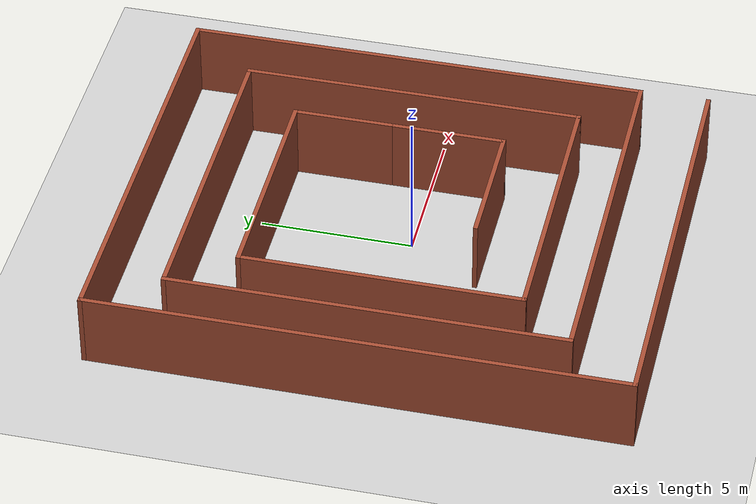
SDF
<sdf version="1.7">
 <world name="maze_world">
  <physics type="ode">
   <ode>
    <solver>
     <friction_model>cone_model</friction_model>
     <type>quick</type>
     <iters>50</iters>
     <sor>1.3</sor>
     <use_dynamic_moi_rescaling>0</use_dynamic_moi_rescaling>
    </solver>
    <constraints>
     <cfm>0</cfm>
     <erp>0.2</erp>
     <contact_max_correcting_vel>100</contact_max_correcting_vel>
     <contact_surface_layer>0.001</contact_surface_layer>
    </constraints>
   </ode>
   <max_step_size>0.001</max_step_size>
   <real_time_factor>1</real_time_factor>
   <real_time_update_rate>1000</real_time_update_rate>
  </physics>
  <light name="sun" type="directional">
   <pose>0 0 100 0.5 0.5 0</pose>
   <diffuse>1 1 1 1</diffuse>
   <specular>0.1 0.1 0.1 1</specular>
   <direction>0.1 0.1 -0.9</direction>
   <attenuation>
    <range>20</range>
    <constant>0.5</constant>
    <linear>0.01</linear>
    <quadratic>0.001</quadratic>
   </attenuation>
   <spot><inner_angle>0</inner_angle><outer_angle>0</outer_angle><falloff>0</falloff></spot>
  </light>
  <scene>
   <ambient>0.6 0.6 0.6 1</ambient>
   <sky><clouds><speed>12</speed></clouds></sky>
   <shadows>1</shadows>
   <origin_visual>0</origin_visual>
   <background>0.7 0.7 0.7 1</background>
  </scene>
  <model name="ground">
   <static>1</static>
   <link name="ground_link">
    <collision name="collision1">
     <geometry><plane><normal>0 0 1</normal><size>1 1</size></plane></geometry>
    </collision>
    <visual name="visual1"><geometry><plane><normal>0 0 1</normal><size>100 100</size></plane></geometry></visual>
   </link>
  </model>
  <gravity>0 0 -9.8</gravity>
  <magnetic_field>6e-06 2.3e-05 -4.2e-05</magnetic_field>
  <atmosphere type="adiabatic"/>
  <spherical_coordinates>
   <surface_model>EARTH_WGS84</surface_model>
   <latitude_deg>0</latitude_deg>
   <longitude_deg>0</longitude_deg>
   <elevation>0</elevation>
   <heading_deg>0</heading_deg>
  </spherical_coordinates>
  <model name="spimaze">
   <pose>-0.505 0.145 0 0 -0 0</pose>
   <link name="Wall_0">
    <collision name="Wall_0_Collision">
     <geometry><box><size>4.5 0.15 2.5</size></box></geometry>
     <pose>0 0 1.25 0 -0 0</pose>
    </collision>
    <visual name="Wall_0_Visual">
     <pose>0 0 1.25 0 -0 0</pose>
     <geometry><box><size>4.5 0.15 2.5</size></box></geometry>
     <material>
      <script><uri>file://media/materials/scripts/gazebo.material</uri><name>Gazebo/Bricks</name></script>
      <ambient>1 1 1 1</ambient>
     </material>
     <meta><layer>0</layer></meta>
    </visual>
    <pose>1.25 -2.525 0 0 -0 0</pose>
   </link>
   <link name="Wall_1">
    <collision name="Wall_1_Collision">
     <geometry><box><size>3.75 0.15 2.5</size></box></geometry>
     <pose>0 0 1.25 0 -0 0</pose>
    </collision>
    <visual name="Wall_1_Visual">
     <pose>0 0 1.25 0 -0 0</pose>
     <geometry><box><size>3.75 0.15 2.5</size></box></geometry>
     <material>
      <script><uri>file://media/materials/scripts/gazebo.material</uri><name>Gazebo/Bricks</name></script>
      <ambient>1 1 1 1</ambient>
     </material>
     <meta><layer>0</layer></meta>
    </visual>
    <pose>3.425 -0.725 0 0 -0 1.5708</pose>
   </link>
   <link name="Wall_10">
    <collision name="Wall_10_Collision">
     <geometry><box><size>15.25 0.15 2.5</size></box></geometry>
     <pose>0 0 1.25 0 -0 0</pose>
    </collision>
    <visual name="Wall_10_Visual">
     <pose>0 0 1.25 0 -0 0</pose>
     <geometry><box><size>15.25 0.15 2.5</size></box></geometry>
     <material>
      <script><uri>file://media/materials/scripts/gazebo.material</uri><name>Gazebo/Bricks</name></script>
      <ambient>1 1 1 1</ambient>
     </material>
     <meta><layer>0</layer></meta>
    </visual>
    <pose>6.925 1.125 0 0 -0 1.5708</pose>
   </link>
   <link name="Wall_11">
    <collision name="Wall_11_Collision">
     <geometry><box><size>14 0.15 2.5</size></box></geometry>
     <pose>0 0 1.25 0 -0 0</pose>
    </collision>
    <visual name="Wall_11_Visual">
     <pose>0 0 1.25 0 -0 0</pose>
     <geometry><box><size>14 0.15 2.5</size></box></geometry>
     <material>
      <script><uri>file://media/materials/scripts/gazebo.material</uri><name>Gazebo/Bricks</name></script>
      <ambient>1 1 1 1</ambient>
     </material>
     <meta><layer>0</layer></meta>
    </visual>
    <pose>0 8.675 0 0 -0 3.14159</pose>
   </link>
   <link name="Wall_12">
    <collision name="Wall_12_Collision">
     <geometry><box><size>17.5 0.15 2.5</size></box></geometry>
     <pose>0 0 1.25 0 -0 0</pose>
    </collision>
    <visual name="Wall_12_Visual">
     <pose>0 0 1.25 0 -0 0</pose>
     <geometry><box><size>17.5 0.15 2.5</size></box></geometry>
     <material>
      <script><uri>file://media/materials/scripts/gazebo.material</uri><name>Gazebo/Bricks</name></script>
      <ambient>1 1 1 1</ambient>
     </material>
     <meta><layer>0</layer></meta>
    </visual>
    <pose>-6.925 -0 0 0 -0 -1.5708</pose>
   </link>
   <link name="Wall_13">
    <collision name="Wall_13_Collision">
     <geometry><box><size>14 0.15 2.5</size></box></geometry>
     <pose>0 0 1.25 0 -0 0</pose>
    </collision>
    <visual name="Wall_13_Visual">
     <pose>0 0 1.25 0 -0 0</pose>
     <geometry><box><size>14 0.15 2.5</size></box></geometry>
     <material>
      <script><uri>file://media/materials/scripts/gazebo.material</uri><name>Gazebo/Bricks</name></script>
      <ambient>1 1 1 1</ambient>
     </material>
     <meta><layer>0</layer></meta>
    </visual>
    <pose>0 -8.675 0 0 -0 0</pose>
   </link>
   <link name="Wall_2">
    <collision name="Wall_2_Collision">
     <geometry><box><size>3.5 0.15 2.5</size></box></geometry>
     <pose>0 0 1.25 0 -0 0</pose>
    </collision>
    <visual name="Wall_2_Visual">
     <pose>0 0 1.25 0 -0 0</pose>
     <geometry><box><size>3.5 0.15 2.5</size></box></geometry>
     <material>
      <script><uri>file://media/materials/scripts/gazebo.material</uri><name>Gazebo/Bricks</name></script>
      <ambient>1 1 1 1</ambient>
     </material>
     <meta><layer>0</layer></meta>
    </visual>
    <pose>3.425 2.75 0 0 -0 1.5708</pose>
   </link>
   <link name="Wall_3">
    <collision name="Wall_3_Collision">
     <geometry><box><size>7.5 0.15 2.5</size></box></geometry>
     <pose>0 0 1.25 0 -0 0</pose>
    </collision>
    <visual name="Wall_3_Visual">
     <pose>0 0 1.25 0 -0 0</pose>
     <geometry><box><size>7.5 0.15 2.5</size></box></geometry>
     <material>
      <script><uri>file://media/materials/scripts/gazebo.material</uri><name>Gazebo/Bricks</name></script>
      <ambient>1 1 1 1</ambient>
     </material>
     <meta><layer>0</layer></meta>
    </visual>
    <pose>-0.25 4.425 0 0 -0 3.14159</pose>
   </link>
   <link name="Wall_4">
    <collision name="Wall_4_Collision">
     <geometry><box><size>9.25 0.15 2.5</size></box></geometry>
     <pose>0 0 1.25 0 -0 0</pose>
    </collision>
    <visual name="Wall_4_Visual">
     <pose>0 0 1.25 0 -0 0</pose>
     <geometry><box><size>9.25 0.15 2.5</size></box></geometry>
     <material>
      <script><uri>file://media/materials/scripts/gazebo.material</uri><name>Gazebo/Bricks</name></script>
      <ambient>1 1 1 1</ambient>
     </material>
     <meta><layer>0</layer></meta>
    </visual>
    <pose>-3.925 -0.125 0 0 -0 -1.5708</pose>
   </link>
   <link name="Wall_5">
    <collision name="Wall_5_Collision">
     <geometry><box><size>9.25 0.15 2.5</size></box></geometry>
     <pose>0 0 1.25 0 -0 0</pose>
    </collision>
    <visual name="Wall_5_Visual">
     <pose>0 0 1.25 0 -0 0</pose>
     <geometry><box><size>9.25 0.15 2.5</size></box></geometry>
     <material>
      <script><uri>file://media/materials/scripts/gazebo.material</uri><name>Gazebo/Bricks</name></script>
      <ambient>1 1 1 1</ambient>
     </material>
     <meta><layer>0</layer></meta>
    </visual>
    <pose>0.625 -4.675 0 0 -0 0</pose>
   </link>
   <link name="Wall_6">
    <collision name="Wall_6_Collision">
     <geometry><box><size>11.25 0.15 2.5</size></box></geometry>
     <pose>0 0 1.25 0 -0 0</pose>
    </collision>
    <visual name="Wall_6_Visual">
     <pose>0 0 1.25 0 -0 0</pose>
     <geometry><box><size>11.25 0.15 2.5</size></box></geometry>
     <material>
      <script><uri>file://media/materials/scripts/gazebo.material</uri><name>Gazebo/Bricks</name></script>
      <ambient>1 1 1 1</ambient>
     </material>
     <meta><layer>0</layer></meta>
    </visual>
    <pose>5.175 0.875 0 0 -0 1.5708</pose>
   </link>
   <link name="Wall_7">
    <collision name="Wall_7_Collision">
     <geometry><box><size>10.75 0.15 2.5</size></box></geometry>
     <pose>0 0 1.25 0 -0 0</pose>
    </collision>
    <visual name="Wall_7_Visual">
     <pose>0 0 1.25 0 -0 0</pose>
     <geometry><box><size>10.75 0.15 2.5</size></box></geometry>
     <material>
      <script><uri>file://media/materials/scripts/gazebo.material</uri><name>Gazebo/Bricks</name></script>
      <ambient>1 1 1 1</ambient>
     </material>
     <meta><layer>0</layer></meta>
    </visual>
    <pose>-0.125 6.425 0 0 -0 3.14159</pose>
   </link>
   <link name="Wall_8">
    <collision name="Wall_8_Collision">
     <geometry><box><size>13 0.15 2.5</size></box></geometry>
     <pose>0 0 1.25 0 -0 0</pose>
    </collision>
    <visual name="Wall_8_Visual">
     <pose>0 0 1.25 0 -0 0</pose>
     <geometry><box><size>13 0.15 2.5</size></box></geometry>
     <material>
      <script><uri>file://media/materials/scripts/gazebo.material</uri><name>Gazebo/Bricks</name></script>
      <ambient>1 1 1 1</ambient>
     </material>
     <meta><layer>0</layer></meta>
    </visual>
    <pose>-5.425 -0 0 0 -0 -1.5708</pose>
   </link>
   <link name="Wall_9">
    <collision name="Wall_9_Collision">
     <geometry><box><size>12.5 0.15 2.5</size></box></geometry>
     <pose>0 0 1.25 0 -0 0</pose>
    </collision>
    <visual name="Wall_9_Visual">
     <pose>0 0 1.25 0 -0 0</pose>
     <geometry><box><size>12.5 0.15 2.5</size></box></geometry>
     <material>
      <script><uri>file://media/materials/scripts/gazebo.material</uri><name>Gazebo/Bricks</name></script>
      <ambient>1 1 1 1</ambient>
     </material>
     <meta><layer>0</layer></meta>
    </visual>
    <pose>0.75 -6.425 0 0 -0 0</pose>
   </link>
   <static>1</static>
  </model>
 </world>
</sdf>
